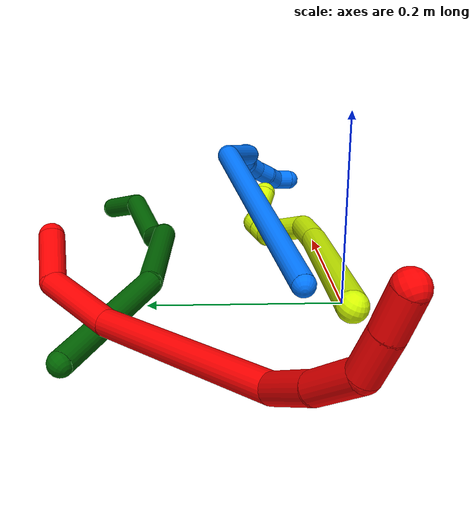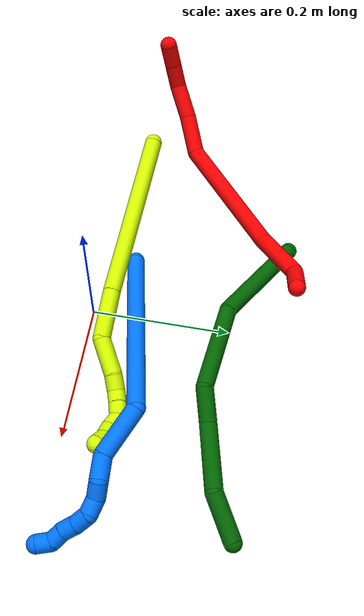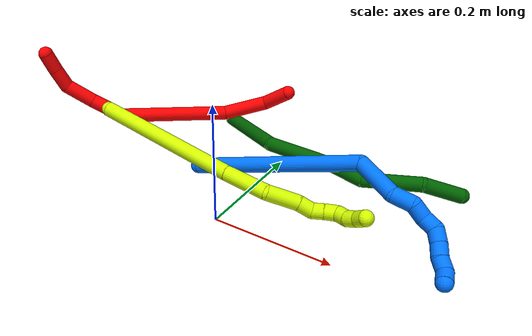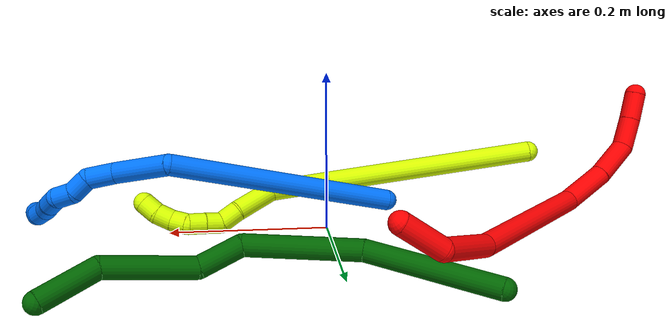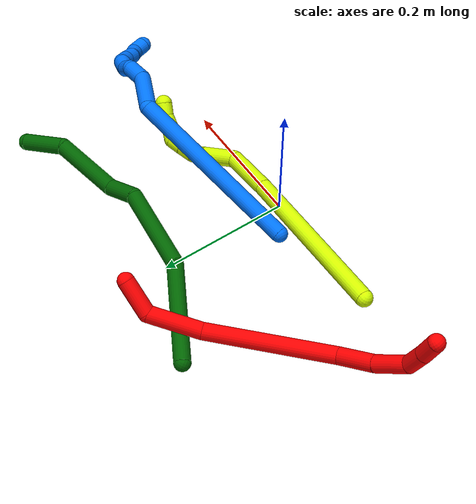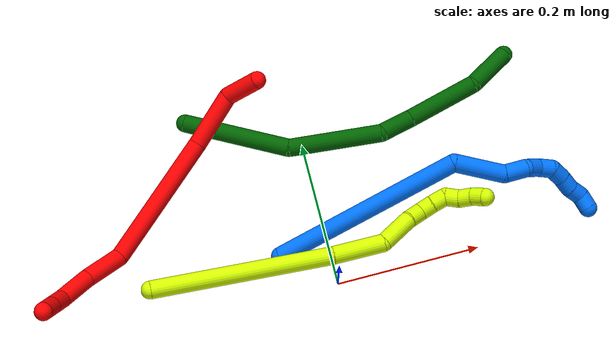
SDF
<sdf version="1.7">
 <world name="default">
  <model name="2">
   <static>0</static>
   <link name="2">
    <collision name="collision-cylinder-e_1_1_4">
     <pose>-0.005003 0.003401 -0.025767 -3.01035 -0.190166 1.93491</pose>
     <geometry><cylinder><radius>0.0125</radius><length>0.052936</length></cylinder></geometry>
     <surface>
      <friction><ode><mu>1.16</mu><mu2>1.16</mu2><slip1>0</slip1><slip2>0</slip2></ode></friction>
      <contact><ode><kp>1e+06</kp><kd>1</kd><max_vel>0</max_vel><min_depth>0.001</min_depth></ode></contact>
     </surface>
    </collision>
    <visual name="visual-cylinder-e_1_1_4">
     <pose>-0.005003 0.003401 -0.025767 -3.01035 -0.190166 1.93491</pose>
     <geometry><cylinder><radius>0.0125</radius><length>0.052936</length></cylinder></geometry>
     <material><ambient>1 0 0 1</ambient></material>
    </visual>
    <collision name="collision-cylinder-e_2_4_5">
     <pose>-0.022686 -0.013612 -0.082626 2.5606 -0.328542 -1.01255</pose>
     <geometry><cylinder><radius>0.0125</radius><length>0.078593</length></cylinder></geometry>
     <surface>
      <friction><ode><mu>1.16</mu><mu2>1.16</mu2><slip1>0</slip1><slip2>0</slip2></ode></friction>
      <contact><ode><kp>1e+06</kp><kd>1</kd><max_vel>0</max_vel><min_depth>0.001</min_depth></ode></contact>
     </surface>
    </collision>
    <visual name="visual-cylinder-e_2_4_5">
     <pose>-0.022686 -0.013612 -0.082626 2.5606 -0.328542 -1.01255</pose>
     <geometry><cylinder><radius>0.0125</radius><length>0.078593</length></cylinder></geometry>
     <material><ambient>1 0 0 1</ambient></material>
    </visual>
    <collision name="collision-cylinder-e_3_5_6">
     <pose>-0.082667 -0.089174 -0.173765 2.39871 -0.525725 -1.20907</pose>
     <geometry><cylinder><radius>0.0125</radius><length>0.188514</length></cylinder></geometry>
     <surface>
      <friction><ode><mu>1.16</mu><mu2>1.16</mu2><slip1>0</slip1><slip2>0</slip2></ode></friction>
      <contact><ode><kp>1e+06</kp><kd>1</kd><max_vel>0</max_vel><min_depth>0.001</min_depth></ode></contact>
     </surface>
    </collision>
    <visual name="visual-cylinder-e_3_5_6">
     <pose>-0.082667 -0.089174 -0.173765 2.39871 -0.525725 -1.20907</pose>
     <geometry><cylinder><radius>0.0125</radius><length>0.188514</length></cylinder></geometry>
     <material><ambient>1 0 0 1</ambient></material>
    </visual>
    <collision name="collision-cylinder-e_4_6_7">
     <pose>-0.154945 -0.155369 -0.244168 2.32384 -1.02578 -1.82998</pose>
     <geometry><cylinder><radius>0.0125</radius><length>0.058414</length></cylinder></geometry>
     <surface>
      <friction><ode><mu>1.16</mu><mu2>1.16</mu2><slip1>0</slip1><slip2>0</slip2></ode></friction>
      <contact><ode><kp>1e+06</kp><kd>1</kd><max_vel>0</max_vel><min_depth>0.001</min_depth></ode></contact>
     </surface>
    </collision>
    <visual name="visual-cylinder-e_4_6_7">
     <pose>-0.154945 -0.155369 -0.244168 2.32384 -1.02578 -1.82998</pose>
     <geometry><cylinder><radius>0.0125</radius><length>0.058414</length></cylinder></geometry>
     <material><ambient>1 0 0 1</ambient></material>
    </visual>
    <collision name="collision-cylinder-e_5_7_8">
     <pose>-0.20191 -0.178974 -0.260304 2.00226 -1.00955 -1.42358</pose>
     <geometry><cylinder><radius>0.0125</radius><length>0.051949</length></cylinder></geometry>
     <surface>
      <friction><ode><mu>1.16</mu><mu2>1.16</mu2><slip1>0</slip1><slip2>0</slip2></ode></friction>
      <contact><ode><kp>1e+06</kp><kd>1</kd><max_vel>0</max_vel><min_depth>0.001</min_depth></ode></contact>
     </surface>
    </collision>
    <visual name="visual-cylinder-e_5_7_8">
     <pose>-0.20191 -0.178974 -0.260304 2.00226 -1.00955 -1.42358</pose>
     <geometry><cylinder><radius>0.0125</radius><length>0.051949</length></cylinder></geometry>
     <material><ambient>1 0 0 1</ambient></material>
    </visual>
    <collision name="collision-cylinder-e_6_8_9">
     <pose>-0.239031 -0.199711 -0.260248 0.950901 -0.984536 -0.5388</pose>
     <geometry><cylinder><radius>0.0125</radius><length>0.036327</length></cylinder></geometry>
     <surface>
      <friction><ode><mu>1.16</mu><mu2>1.16</mu2><slip1>0</slip1><slip2>0</slip2></ode></friction>
      <contact><ode><kp>1e+06</kp><kd>1</kd><max_vel>0</max_vel><min_depth>0.001</min_depth></ode></contact>
     </surface>
    </collision>
    <visual name="visual-cylinder-e_6_8_9">
     <pose>-0.239031 -0.199711 -0.260248 0.950901 -0.984536 -0.5388</pose>
     <geometry><cylinder><radius>0.0125</radius><length>0.036327</length></cylinder></geometry>
     <material><ambient>1 0 0 1</ambient></material>
    </visual>
    <collision name="collision-cylinder-e_7_9_2">
     <pose>-0.267611 -0.215315 -0.248035 0.86134 -0.941807 -0.459535</pose>
     <geometry><cylinder><radius>0.0125</radius><length>0.033266</length></cylinder></geometry>
     <surface>
      <friction><ode><mu>1.16</mu><mu2>1.16</mu2><slip1>0</slip1><slip2>0</slip2></ode></friction>
      <contact><ode><kp>1e+06</kp><kd>1</kd><max_vel>0</max_vel><min_depth>0.001</min_depth></ode></contact>
     </surface>
    </collision>
    <visual name="visual-cylinder-e_7_9_2">
     <pose>-0.267611 -0.215315 -0.248035 0.86134 -0.941807 -0.459535</pose>
     <geometry><cylinder><radius>0.0125</radius><length>0.033266</length></cylinder></geometry>
     <material><ambient>1 0 0 1</ambient></material>
    </visual>
    <collision name="collision-sphere-2">
     <pose>-0.281061 -0.22274 -0.241661 0 -0 0</pose>
     <geometry><sphere><radius>0.0125</radius></sphere></geometry>
     <surface>
      <friction><ode><mu>1.16</mu><mu2>1.16</mu2><slip1>0</slip1><slip2>0</slip2></ode></friction>
      <contact><ode><kp>1e+06</kp><kd>1</kd><max_vel>0</max_vel><min_depth>0.001</min_depth></ode></contact>
     </surface>
    </collision>
    <visual name="visual-sphere-2">
     <pose>-0.281061 -0.22274 -0.241661 0 -0 0</pose>
     <geometry><sphere><radius>0.0125</radius></sphere></geometry>
     <material><ambient>1 0 0 1</ambient></material>
    </visual>
    <collision name="collision-sphere-9">
     <pose>-0.254161 -0.207891 -0.25441 0 -0 0</pose>
     <geometry><sphere><radius>0.0125</radius></sphere></geometry>
     <surface>
      <friction><ode><mu>1.16</mu><mu2>1.16</mu2><slip1>0</slip1><slip2>0</slip2></ode></friction>
      <contact><ode><kp>1e+06</kp><kd>1</kd><max_vel>0</max_vel><min_depth>0.001</min_depth></ode></contact>
     </surface>
    </collision>
    <visual name="visual-sphere-9">
     <pose>-0.254161 -0.207891 -0.25441 0 -0 0</pose>
     <geometry><sphere><radius>0.0125</radius></sphere></geometry>
     <material><ambient>1 0 0 1</ambient></material>
    </visual>
    <collision name="collision-sphere-4">
     <pose>-0.010006 0.006803 -0.051534 0 -0 0</pose>
     <geometry><sphere><radius>0.0125</radius></sphere></geometry>
     <surface>
      <friction><ode><mu>1.16</mu><mu2>1.16</mu2><slip1>0</slip1><slip2>0</slip2></ode></friction>
      <contact><ode><kp>1e+06</kp><kd>1</kd><max_vel>0</max_vel><min_depth>0.001</min_depth></ode></contact>
     </surface>
    </collision>
    <visual name="visual-sphere-4">
     <pose>-0.010006 0.006803 -0.051534 0 -0 0</pose>
     <geometry><sphere><radius>0.0125</radius></sphere></geometry>
     <material><ambient>1 0 0 1</ambient></material>
    </visual>
    <collision name="collision-sphere-1">
     <geometry><sphere><radius>0.0125</radius></sphere></geometry>
     <surface>
      <friction><ode><mu>1.16</mu><mu2>1.16</mu2><slip1>0</slip1><slip2>0</slip2></ode></friction>
      <contact><ode><kp>1e+06</kp><kd>1</kd><max_vel>0</max_vel><min_depth>0.001</min_depth></ode></contact>
     </surface>
    </collision>
    <visual name="visual-sphere-1">
     <geometry><sphere><radius>0.0125</radius></sphere></geometry>
     <material><ambient>1 0 0 1</ambient></material>
    </visual>
    <collision name="collision-sphere-8">
     <pose>-0.2239 -0.191532 -0.266086 0 -0 0</pose>
     <geometry><sphere><radius>0.0125</radius></sphere></geometry>
     <surface>
      <friction><ode><mu>1.16</mu><mu2>1.16</mu2><slip1>0</slip1><slip2>0</slip2></ode></friction>
      <contact><ode><kp>1e+06</kp><kd>1</kd><max_vel>0</max_vel><min_depth>0.001</min_depth></ode></contact>
     </surface>
    </collision>
    <visual name="visual-sphere-8">
     <pose>-0.2239 -0.191532 -0.266086 0 -0 0</pose>
     <geometry><sphere><radius>0.0125</radius></sphere></geometry>
     <material><ambient>1 0 0 1</ambient></material>
    </visual>
    <collision name="collision-sphere-5">
     <pose>-0.035365 -0.034027 -0.113718 0 -0 0</pose>
     <geometry><sphere><radius>0.0125</radius></sphere></geometry>
     <surface>
      <friction><ode><mu>1.16</mu><mu2>1.16</mu2><slip1>0</slip1><slip2>0</slip2></ode></friction>
      <contact><ode><kp>1e+06</kp><kd>1</kd><max_vel>0</max_vel><min_depth>0.001</min_depth></ode></contact>
     </surface>
    </collision>
    <visual name="visual-sphere-5">
     <pose>-0.035365 -0.034027 -0.113718 0 -0 0</pose>
     <geometry><sphere><radius>0.0125</radius></sphere></geometry>
     <material><ambient>1 0 0 1</ambient></material>
    </visual>
    <collision name="collision-sphere-6">
     <pose>-0.129969 -0.144321 -0.233813 0 -0 0</pose>
     <geometry><sphere><radius>0.0125</radius></sphere></geometry>
     <surface>
      <friction><ode><mu>1.16</mu><mu2>1.16</mu2><slip1>0</slip1><slip2>0</slip2></ode></friction>
      <contact><ode><kp>1e+06</kp><kd>1</kd><max_vel>0</max_vel><min_depth>0.001</min_depth></ode></contact>
     </surface>
    </collision>
    <visual name="visual-sphere-6">
     <pose>-0.129969 -0.144321 -0.233813 0 -0 0</pose>
     <geometry><sphere><radius>0.0125</radius></sphere></geometry>
     <material><ambient>1 0 0 1</ambient></material>
    </visual>
    <collision name="collision-sphere-7">
     <pose>-0.17992 -0.166417 -0.254523 0 -0 0</pose>
     <geometry><sphere><radius>0.0125</radius></sphere></geometry>
     <surface>
      <friction><ode><mu>1.16</mu><mu2>1.16</mu2><slip1>0</slip1><slip2>0</slip2></ode></friction>
      <contact><ode><kp>1e+06</kp><kd>1</kd><max_vel>0</max_vel><min_depth>0.001</min_depth></ode></contact>
     </surface>
    </collision>
    <visual name="visual-sphere-7">
     <pose>-0.17992 -0.166417 -0.254523 0 -0 0</pose>
     <geometry><sphere><radius>0.0125</radius></sphere></geometry>
     <material><ambient>1 0 0 1</ambient></material>
    </visual>
    <inertial>
     <pose>-0.109515 -0.100983 -0.172212 0 -0 0</pose>
     <mass>0.5</mass>
     <inertia>
      <ixx>-0.000327</ixx>
      <ixy>0</ixy>
      <ixz>0</ixz>
      <iyy>-0.000459</iyy>
      <iyz>0</iyz>
      <izz>0.000687</izz>
     </inertia>
    </inertial>
   </link>
   <pose>-0.039751 0.287612 0.089211 -0.34295 0.762435 -0.139442</pose>
  </model>
  <model name="6">
   <static>0</static>
   <link name="6">
    <collision name="collision-cylinder-e_1_1_4">
     <pose>0.046927 -0.052878 -0.028232 2.06121 0.664206 1.0438</pose>
     <geometry><cylinder><radius>0.0125</radius><length>0.152253</length></cylinder></geometry>
     <surface>
      <friction><ode><mu>1.16</mu><mu2>1.16</mu2><slip1>0</slip1><slip2>0</slip2></ode></friction>
      <contact><ode><kp>1e+06</kp><kd>1</kd><max_vel>0</max_vel><min_depth>0.001</min_depth></ode></contact>
     </surface>
    </collision>
    <visual name="visual-cylinder-e_1_1_4">
     <pose>0.046927 -0.052878 -0.028232 2.06121 0.664206 1.0438</pose>
     <geometry><cylinder><radius>0.0125</radius><length>0.152253</length></cylinder></geometry>
     <material><ambient>0 0.392157 0.003922 1</ambient></material>
    </visual>
    <collision name="collision-cylinder-e_2_4_5">
     <pose>0.114559 -0.149509 -0.099398 2.34673 0.325728 0.746231</pose>
     <geometry><cylinder><radius>0.0125</radius><length>0.129404</length></cylinder></geometry>
     <surface>
      <friction><ode><mu>1.16</mu><mu2>1.16</mu2><slip1>0</slip1><slip2>0</slip2></ode></friction>
      <contact><ode><kp>1e+06</kp><kd>1</kd><max_vel>0</max_vel><min_depth>0.001</min_depth></ode></contact>
     </surface>
    </collision>
    <visual name="visual-cylinder-e_2_4_5">
     <pose>0.114559 -0.149509 -0.099398 2.34673 0.325728 0.746231</pose>
     <geometry><cylinder><radius>0.0125</radius><length>0.129404</length></cylinder></geometry>
     <material><ambient>0 0.392157 0.003922 1</ambient></material>
    </visual>
    <collision name="collision-cylinder-e_3_5_6">
     <pose>0.129195 -0.211483 -0.158942 2.31003 -0.241336 -0.536052</pose>
     <geometry><cylinder><radius>0.0125</radius><length>0.050783</length></cylinder></geometry>
     <surface>
      <friction><ode><mu>1.16</mu><mu2>1.16</mu2><slip1>0</slip1><slip2>0</slip2></ode></friction>
      <contact><ode><kp>1e+06</kp><kd>1</kd><max_vel>0</max_vel><min_depth>0.001</min_depth></ode></contact>
     </surface>
    </collision>
    <visual name="visual-cylinder-e_3_5_6">
     <pose>0.129195 -0.211483 -0.158942 2.31003 -0.241336 -0.536052</pose>
     <geometry><cylinder><radius>0.0125</radius><length>0.050783</length></cylinder></geometry>
     <material><ambient>0 0.392157 0.003922 1</ambient></material>
    </visual>
    <collision name="collision-cylinder-e_4_6_7">
     <pose>0.13014 -0.2535 -0.219156 2.64201 0.140269 0.537405</pose>
     <geometry><cylinder><radius>0.0125</radius><length>0.100331</length></cylinder></geometry>
     <surface>
      <friction><ode><mu>1.16</mu><mu2>1.16</mu2><slip1>0</slip1><slip2>0</slip2></ode></friction>
      <contact><ode><kp>1e+06</kp><kd>1</kd><max_vel>0</max_vel><min_depth>0.001</min_depth></ode></contact>
     </surface>
    </collision>
    <visual name="visual-cylinder-e_4_6_7">
     <pose>0.13014 -0.2535 -0.219156 2.64201 0.140269 0.537405</pose>
     <geometry><cylinder><radius>0.0125</radius><length>0.100331</length></cylinder></geometry>
     <material><ambient>0 0.392157 0.003922 1</ambient></material>
    </visual>
    <collision name="collision-cylinder-e_5_7_2">
     <pose>0.124136 -0.294864 -0.288289 2.5389 -0.397647 -1.15029</pose>
     <geometry><cylinder><radius>0.0125</radius><length>0.067228</length></cylinder></geometry>
     <surface>
      <friction><ode><mu>1.16</mu><mu2>1.16</mu2><slip1>0</slip1><slip2>0</slip2></ode></friction>
      <contact><ode><kp>1e+06</kp><kd>1</kd><max_vel>0</max_vel><min_depth>0.001</min_depth></ode></contact>
     </surface>
    </collision>
    <visual name="visual-cylinder-e_5_7_2">
     <pose>0.124136 -0.294864 -0.288289 2.5389 -0.397647 -1.15029</pose>
     <geometry><cylinder><radius>0.0125</radius><length>0.067228</length></cylinder></geometry>
     <material><ambient>0 0.392157 0.003922 1</ambient></material>
    </visual>
    <collision name="collision-sphere-2">
     <pose>0.111119 -0.312432 -0.31382 0 -0 0</pose>
     <geometry><sphere><radius>0.0125</radius></sphere></geometry>
     <surface>
      <friction><ode><mu>1.16</mu><mu2>1.16</mu2><slip1>0</slip1><slip2>0</slip2></ode></friction>
      <contact><ode><kp>1e+06</kp><kd>1</kd><max_vel>0</max_vel><min_depth>0.001</min_depth></ode></contact>
     </surface>
    </collision>
    <visual name="visual-sphere-2">
     <pose>0.111119 -0.312432 -0.31382 0 -0 0</pose>
     <geometry><sphere><radius>0.0125</radius></sphere></geometry>
     <material><ambient>0 0.392157 0.003922 1</ambient></material>
    </visual>
    <collision name="collision-sphere-7">
     <pose>0.137153 -0.277296 -0.262758 0 -0 0</pose>
     <geometry><sphere><radius>0.0125</radius></sphere></geometry>
     <surface>
      <friction><ode><mu>1.16</mu><mu2>1.16</mu2><slip1>0</slip1><slip2>0</slip2></ode></friction>
      <contact><ode><kp>1e+06</kp><kd>1</kd><max_vel>0</max_vel><min_depth>0.001</min_depth></ode></contact>
     </surface>
    </collision>
    <visual name="visual-sphere-7">
     <pose>0.137153 -0.277296 -0.262758 0 -0 0</pose>
     <geometry><sphere><radius>0.0125</radius></sphere></geometry>
     <material><ambient>0 0.392157 0.003922 1</ambient></material>
    </visual>
    <collision name="collision-sphere-6">
     <pose>0.123126 -0.229704 -0.175553 0 -0 0</pose>
     <geometry><sphere><radius>0.0125</radius></sphere></geometry>
     <surface>
      <friction><ode><mu>1.16</mu><mu2>1.16</mu2><slip1>0</slip1><slip2>0</slip2></ode></friction>
      <contact><ode><kp>1e+06</kp><kd>1</kd><max_vel>0</max_vel><min_depth>0.001</min_depth></ode></contact>
     </surface>
    </collision>
    <visual name="visual-sphere-6">
     <pose>0.123126 -0.229704 -0.175553 0 -0 0</pose>
     <geometry><sphere><radius>0.0125</radius></sphere></geometry>
     <material><ambient>0 0.392157 0.003922 1</ambient></material>
    </visual>
    <collision name="collision-sphere-5">
     <pose>0.135263 -0.193263 -0.142331 0 -0 0</pose>
     <geometry><sphere><radius>0.0125</radius></sphere></geometry>
     <surface>
      <friction><ode><mu>1.16</mu><mu2>1.16</mu2><slip1>0</slip1><slip2>0</slip2></ode></friction>
      <contact><ode><kp>1e+06</kp><kd>1</kd><max_vel>0</max_vel><min_depth>0.001</min_depth></ode></contact>
     </surface>
    </collision>
    <visual name="visual-sphere-5">
     <pose>0.135263 -0.193263 -0.142331 0 -0 0</pose>
     <geometry><sphere><radius>0.0125</radius></sphere></geometry>
     <material><ambient>0 0.392157 0.003922 1</ambient></material>
    </visual>
    <collision name="collision-sphere-1">
     <geometry><sphere><radius>0.0125</radius></sphere></geometry>
     <surface>
      <friction><ode><mu>1.16</mu><mu2>1.16</mu2><slip1>0</slip1><slip2>0</slip2></ode></friction>
      <contact><ode><kp>1e+06</kp><kd>1</kd><max_vel>0</max_vel><min_depth>0.001</min_depth></ode></contact>
     </surface>
    </collision>
    <visual name="visual-sphere-1">
     <geometry><sphere><radius>0.0125</radius></sphere></geometry>
     <material><ambient>0 0.392157 0.003922 1</ambient></material>
    </visual>
    <collision name="collision-sphere-4">
     <pose>0.093854 -0.105755 -0.056465 0 -0 0</pose>
     <geometry><sphere><radius>0.0125</radius></sphere></geometry>
     <surface>
      <friction><ode><mu>1.16</mu><mu2>1.16</mu2><slip1>0</slip1><slip2>0</slip2></ode></friction>
      <contact><ode><kp>1e+06</kp><kd>1</kd><max_vel>0</max_vel><min_depth>0.001</min_depth></ode></contact>
     </surface>
    </collision>
    <visual name="visual-sphere-4">
     <pose>0.093854 -0.105755 -0.056465 0 -0 0</pose>
     <geometry><sphere><radius>0.0125</radius></sphere></geometry>
     <material><ambient>0 0.392157 0.003922 1</ambient></material>
    </visual>
    <inertial>
     <pose>0.099865 -0.16679 -0.133204 0 -0 0</pose>
     <mass>0.5</mass>
     <inertia>
      <ixx>0.000691</ixx>
      <ixy>0</ixy>
      <ixz>0</ixz>
      <iyy>0.000244</iyy>
      <iyz>0</iyz>
      <izz>0.000132</izz>
     </inertia>
    </inertial>
   </link>
   <pose>-0.150303 0.27034 0.011478 2.109 -0.775007 -1.26475</pose>
  </model>
  <model name="14">
   <static>0</static>
   <link name="14">
    <collision name="collision-cylinder-e_1_1_4">
     <pose>0.010108 0.028375 0.131482 -0.212549 0.075004 -0.008005</pose>
     <geometry><cylinder><radius>0.0125</radius><length>0.269777</length></cylinder></geometry>
     <surface>
      <friction><ode><mu>1.16</mu><mu2>1.16</mu2><slip1>0</slip1><slip2>0</slip2></ode></friction>
      <contact><ode><kp>1e+06</kp><kd>1</kd><max_vel>0</max_vel><min_depth>0.001</min_depth></ode></contact>
     </surface>
    </collision>
    <visual name="visual-cylinder-e_1_1_4">
     <pose>0.010108 0.028375 0.131482 -0.212549 0.075004 -0.008005</pose>
     <geometry><cylinder><radius>0.0125</radius><length>0.269777</length></cylinder></geometry>
     <material><ambient>0 0.462745 1 1</ambient></material>
    </visual>
    <collision name="collision-cylinder-e_2_4_5">
     <pose>0.033583 0.040107 0.291437 0.528968 0.385089 0.105504</pose>
     <geometry><cylinder><radius>0.0125</radius><length>0.071171</length></cylinder></geometry>
     <surface>
      <friction><ode><mu>1.16</mu><mu2>1.16</mu2><slip1>0</slip1><slip2>0</slip2></ode></friction>
      <contact><ode><kp>1e+06</kp><kd>1</kd><max_vel>0</max_vel><min_depth>0.001</min_depth></ode></contact>
     </surface>
    </collision>
    <visual name="visual-cylinder-e_2_4_5">
     <pose>0.033583 0.040107 0.291437 0.528968 0.385089 0.105504</pose>
     <geometry><cylinder><radius>0.0125</radius><length>0.071171</length></cylinder></geometry>
     <material><ambient>0 0.462745 1 1</ambient></material>
    </visual>
    <collision name="collision-cylinder-e_3_5_6">
     <pose>0.054122 0.023163 0.334154 0.021142 0.466294 0.005021</pose>
     <geometry><cylinder><radius>0.0125</radius><length>0.031901</length></cylinder></geometry>
     <surface>
      <friction><ode><mu>1.16</mu><mu2>1.16</mu2><slip1>0</slip1><slip2>0</slip2></ode></friction>
      <contact><ode><kp>1e+06</kp><kd>1</kd><max_vel>0</max_vel><min_depth>0.001</min_depth></ode></contact>
     </surface>
    </collision>
    <visual name="visual-cylinder-e_3_5_6">
     <pose>0.054122 0.023163 0.334154 0.021142 0.466294 0.005021</pose>
     <geometry><cylinder><radius>0.0125</radius><length>0.031901</length></cylinder></geometry>
     <material><ambient>0 0.462745 1 1</ambient></material>
    </visual>
    <collision name="collision-cylinder-e_4_6_7">
     <pose>0.071246 0.021052 0.354216 0.301643 1.02149 0.169906</pose>
     <geometry><cylinder><radius>0.0125</radius><length>0.023341</length></cylinder></geometry>
     <surface>
      <friction><ode><mu>1.16</mu><mu2>1.16</mu2><slip1>0</slip1><slip2>0</slip2></ode></friction>
      <contact><ode><kp>1e+06</kp><kd>1</kd><max_vel>0</max_vel><min_depth>0.001</min_depth></ode></contact>
     </surface>
    </collision>
    <visual name="visual-cylinder-e_4_6_7">
     <pose>0.071246 0.021052 0.354216 0.301643 1.02149 0.169906</pose>
     <geometry><cylinder><radius>0.0125</radius><length>0.023341</length></cylinder></geometry>
     <material><ambient>0 0.462745 1 1</ambient></material>
    </visual>
    <collision name="collision-cylinder-e_5_7_8">
     <pose>0.086936 0.015525 0.368777 0.401953 0.543183 0.113343</pose>
     <geometry><cylinder><radius>0.0125</radius><length>0.022194</length></cylinder></geometry>
     <surface>
      <friction><ode><mu>1.16</mu><mu2>1.16</mu2><slip1>0</slip1><slip2>0</slip2></ode></friction>
      <contact><ode><kp>1e+06</kp><kd>1</kd><max_vel>0</max_vel><min_depth>0.001</min_depth></ode></contact>
     </surface>
    </collision>
    <visual name="visual-cylinder-e_5_7_8">
     <pose>0.086936 0.015525 0.368777 0.401953 0.543183 0.113343</pose>
     <geometry><cylinder><radius>0.0125</radius><length>0.022194</length></cylinder></geometry>
     <material><ambient>0 0.462745 1 1</ambient></material>
    </visual>
    <collision name="collision-cylinder-e_6_8_9">
     <pose>0.098638 0.003993 0.38134 1.11619 0.601214 0.382339</pose>
     <geometry><cylinder><radius>0.0125</radius><length>0.021098</length></cylinder></geometry>
     <surface>
      <friction><ode><mu>1.16</mu><mu2>1.16</mu2><slip1>0</slip1><slip2>0</slip2></ode></friction>
      <contact><ode><kp>1e+06</kp><kd>1</kd><max_vel>0</max_vel><min_depth>0.001</min_depth></ode></contact>
     </surface>
    </collision>
    <visual name="visual-cylinder-e_6_8_9">
     <pose>0.098638 0.003993 0.38134 1.11619 0.601214 0.382339</pose>
     <geometry><cylinder><radius>0.0125</radius><length>0.021098</length></cylinder></geometry>
     <material><ambient>0 0.462745 1 1</ambient></material>
    </visual>
    <collision name="collision-cylinder-e_7_9_10">
     <pose>0.109149 -0.01247 0.388032 1.25012 0.462544 0.336626</pose>
     <geometry><cylinder><radius>0.0125</radius><length>0.020364</length></cylinder></geometry>
     <surface>
      <friction><ode><mu>1.16</mu><mu2>1.16</mu2><slip1>0</slip1><slip2>0</slip2></ode></friction>
      <contact><ode><kp>1e+06</kp><kd>1</kd><max_vel>0</max_vel><min_depth>0.001</min_depth></ode></contact>
     </surface>
    </collision>
    <visual name="visual-cylinder-e_7_9_10">
     <pose>0.109149 -0.01247 0.388032 1.25012 0.462544 0.336626</pose>
     <geometry><cylinder><radius>0.0125</radius><length>0.020364</length></cylinder></geometry>
     <material><ambient>0 0.462745 1 1</ambient></material>
    </visual>
    <collision name="collision-cylinder-e_8_10_11">
     <pose>0.119095 -0.028069 0.395784 0.958696 0.566555 0.300345</pose>
     <geometry><cylinder><radius>0.0125</radius><length>0.020133</length></cylinder></geometry>
     <surface>
      <friction><ode><mu>1.16</mu><mu2>1.16</mu2><slip1>0</slip1><slip2>0</slip2></ode></friction>
      <contact><ode><kp>1e+06</kp><kd>1</kd><max_vel>0</max_vel><min_depth>0.001</min_depth></ode></contact>
     </surface>
    </collision>
    <visual name="visual-cylinder-e_8_10_11">
     <pose>0.119095 -0.028069 0.395784 0.958696 0.566555 0.300345</pose>
     <geometry><cylinder><radius>0.0125</radius><length>0.020133</length></cylinder></geometry>
     <material><ambient>0 0.462745 1 1</ambient></material>
    </visual>
    <collision name="collision-cylinder-e_9_11_2">
     <pose>0.124617 -0.044641 0.403429 1.29097 0.011868 0.008938</pose>
     <geometry><cylinder><radius>0.0125</radius><length>0.02002</length></cylinder></geometry>
     <surface>
      <friction><ode><mu>1.16</mu><mu2>1.16</mu2><slip1>0</slip1><slip2>0</slip2></ode></friction>
      <contact><ode><kp>1e+06</kp><kd>1</kd><max_vel>0</max_vel><min_depth>0.001</min_depth></ode></contact>
     </surface>
    </collision>
    <visual name="visual-cylinder-e_9_11_2">
     <pose>0.124617 -0.044641 0.403429 1.29097 0.011868 0.008938</pose>
     <geometry><cylinder><radius>0.0125</radius><length>0.02002</length></cylinder></geometry>
     <material><ambient>0 0.462745 1 1</ambient></material>
    </visual>
    <collision name="collision-sphere-2">
     <pose>0.124736 -0.054261 0.406194 0 -0 0</pose>
     <geometry><sphere><radius>0.0125</radius></sphere></geometry>
     <surface>
      <friction><ode><mu>1.16</mu><mu2>1.16</mu2><slip1>0</slip1><slip2>0</slip2></ode></friction>
      <contact><ode><kp>1e+06</kp><kd>1</kd><max_vel>0</max_vel><min_depth>0.001</min_depth></ode></contact>
     </surface>
    </collision>
    <visual name="visual-sphere-2">
     <pose>0.124736 -0.054261 0.406194 0 -0 0</pose>
     <geometry><sphere><radius>0.0125</radius></sphere></geometry>
     <material><ambient>0 0.462745 1 1</ambient></material>
    </visual>
    <collision name="collision-sphere-11">
     <pose>0.124498 -0.035021 0.400665 0 -0 0</pose>
     <geometry><sphere><radius>0.0125</radius></sphere></geometry>
     <surface>
      <friction><ode><mu>1.16</mu><mu2>1.16</mu2><slip1>0</slip1><slip2>0</slip2></ode></friction>
      <contact><ode><kp>1e+06</kp><kd>1</kd><max_vel>0</max_vel><min_depth>0.001</min_depth></ode></contact>
     </surface>
    </collision>
    <visual name="visual-sphere-11">
     <pose>0.124498 -0.035021 0.400665 0 -0 0</pose>
     <geometry><sphere><radius>0.0125</radius></sphere></geometry>
     <material><ambient>0 0.462745 1 1</ambient></material>
    </visual>
    <collision name="collision-sphere-10">
     <pose>0.113692 -0.021118 0.390904 0 -0 0</pose>
     <geometry><sphere><radius>0.0125</radius></sphere></geometry>
     <surface>
      <friction><ode><mu>1.16</mu><mu2>1.16</mu2><slip1>0</slip1><slip2>0</slip2></ode></friction>
      <contact><ode><kp>1e+06</kp><kd>1</kd><max_vel>0</max_vel><min_depth>0.001</min_depth></ode></contact>
     </surface>
    </collision>
    <visual name="visual-sphere-10">
     <pose>0.113692 -0.021118 0.390904 0 -0 0</pose>
     <geometry><sphere><radius>0.0125</radius></sphere></geometry>
     <material><ambient>0 0.462745 1 1</ambient></material>
    </visual>
    <collision name="collision-sphere-9">
     <pose>0.104605 -0.003823 0.38516 0 -0 0</pose>
     <geometry><sphere><radius>0.0125</radius></sphere></geometry>
     <surface>
      <friction><ode><mu>1.16</mu><mu2>1.16</mu2><slip1>0</slip1><slip2>0</slip2></ode></friction>
      <contact><ode><kp>1e+06</kp><kd>1</kd><max_vel>0</max_vel><min_depth>0.001</min_depth></ode></contact>
     </surface>
    </collision>
    <visual name="visual-sphere-9">
     <pose>0.104605 -0.003823 0.38516 0 -0 0</pose>
     <geometry><sphere><radius>0.0125</radius></sphere></geometry>
     <material><ambient>0 0.462745 1 1</ambient></material>
    </visual>
    <collision name="collision-sphere-4">
     <pose>0.020216 0.05675 0.262965 0 -0 0</pose>
     <geometry><sphere><radius>0.0125</radius></sphere></geometry>
     <surface>
      <friction><ode><mu>1.16</mu><mu2>1.16</mu2><slip1>0</slip1><slip2>0</slip2></ode></friction>
      <contact><ode><kp>1e+06</kp><kd>1</kd><max_vel>0</max_vel><min_depth>0.001</min_depth></ode></contact>
     </surface>
    </collision>
    <visual name="visual-sphere-4">
     <pose>0.020216 0.05675 0.262965 0 -0 0</pose>
     <geometry><sphere><radius>0.0125</radius></sphere></geometry>
     <material><ambient>0 0.462745 1 1</ambient></material>
    </visual>
    <collision name="collision-sphere-1">
     <geometry><sphere><radius>0.0125</radius></sphere></geometry>
     <surface>
      <friction><ode><mu>1.16</mu><mu2>1.16</mu2><slip1>0</slip1><slip2>0</slip2></ode></friction>
      <contact><ode><kp>1e+06</kp><kd>1</kd><max_vel>0</max_vel><min_depth>0.001</min_depth></ode></contact>
     </surface>
    </collision>
    <visual name="visual-sphere-1">
     <geometry><sphere><radius>0.0125</radius></sphere></geometry>
     <material><ambient>0 0.462745 1 1</ambient></material>
    </visual>
    <collision name="collision-sphere-8">
     <pose>0.092671 0.011808 0.37752 0 -0 0</pose>
     <geometry><sphere><radius>0.0125</radius></sphere></geometry>
     <surface>
      <friction><ode><mu>1.16</mu><mu2>1.16</mu2><slip1>0</slip1><slip2>0</slip2></ode></friction>
      <contact><ode><kp>1e+06</kp><kd>1</kd><max_vel>0</max_vel><min_depth>0.001</min_depth></ode></contact>
     </surface>
    </collision>
    <visual name="visual-sphere-8">
     <pose>0.092671 0.011808 0.37752 0 -0 0</pose>
     <geometry><sphere><radius>0.0125</radius></sphere></geometry>
     <material><ambient>0 0.462745 1 1</ambient></material>
    </visual>
    <collision name="collision-sphere-5">
     <pose>0.046951 0.023464 0.319909 0 -0 0</pose>
     <geometry><sphere><radius>0.0125</radius></sphere></geometry>
     <surface>
      <friction><ode><mu>1.16</mu><mu2>1.16</mu2><slip1>0</slip1><slip2>0</slip2></ode></friction>
      <contact><ode><kp>1e+06</kp><kd>1</kd><max_vel>0</max_vel><min_depth>0.001</min_depth></ode></contact>
     </surface>
    </collision>
    <visual name="visual-sphere-5">
     <pose>0.046951 0.023464 0.319909 0 -0 0</pose>
     <geometry><sphere><radius>0.0125</radius></sphere></geometry>
     <material><ambient>0 0.462745 1 1</ambient></material>
    </visual>
    <collision name="collision-sphere-6">
     <pose>0.061293 0.022862 0.348398 0 -0 0</pose>
     <geometry><sphere><radius>0.0125</radius></sphere></geometry>
     <surface>
      <friction><ode><mu>1.16</mu><mu2>1.16</mu2><slip1>0</slip1><slip2>0</slip2></ode></friction>
      <contact><ode><kp>1e+06</kp><kd>1</kd><max_vel>0</max_vel><min_depth>0.001</min_depth></ode></contact>
     </surface>
    </collision>
    <visual name="visual-sphere-6">
     <pose>0.061293 0.022862 0.348398 0 -0 0</pose>
     <geometry><sphere><radius>0.0125</radius></sphere></geometry>
     <material><ambient>0 0.462745 1 1</ambient></material>
    </visual>
    <collision name="collision-sphere-7">
     <pose>0.0812 0.019241 0.360035 0 -0 0</pose>
     <geometry><sphere><radius>0.0125</radius></sphere></geometry>
     <surface>
      <friction><ode><mu>1.16</mu><mu2>1.16</mu2><slip1>0</slip1><slip2>0</slip2></ode></friction>
      <contact><ode><kp>1e+06</kp><kd>1</kd><max_vel>0</max_vel><min_depth>0.001</min_depth></ode></contact>
     </surface>
    </collision>
    <visual name="visual-sphere-7">
     <pose>0.0812 0.019241 0.360035 0 -0 0</pose>
     <geometry><sphere><radius>0.0125</radius></sphere></geometry>
     <material><ambient>0 0.462745 1 1</ambient></material>
    </visual>
    <inertial>
     <pose>0.039265 0.020911 0.230635 0 -0 0</pose>
     <mass>0.5</mass>
     <inertia>
      <ixx>0.001685</ixx>
      <ixy>0</ixy>
      <ixz>0</ixz>
      <iyy>0.001637</iyy>
      <iyz>0</iyz>
      <izz>-0.000436</izz>
     </inertia>
    </inertial>
   </link>
   <pose>-0.068553 0.051288 0.048478 0.499714 1.2455 0.50542</pose>
  </model>
  <model name="15">
   <static>0</static>
   <link name="15">
    <collision name="collision-cylinder-e_1_1_4">
     <pose>0.119226 -0.001435 -0.040661 3.1063 1.24193 3.09227</pose>
     <geometry><cylinder><radius>0.0125</radius><length>0.251954</length></cylinder></geometry>
     <surface>
      <friction><ode><mu>1.16</mu><mu2>1.16</mu2><slip1>0</slip1><slip2>0</slip2></ode></friction>
      <contact><ode><kp>1e+06</kp><kd>1</kd><max_vel>0</max_vel><min_depth>0.001</min_depth></ode></contact>
     </surface>
    </collision>
    <visual name="visual-cylinder-e_1_1_4">
     <pose>0.119226 -0.001435 -0.040661 3.1063 1.24193 3.09227</pose>
     <geometry><cylinder><radius>0.0125</radius><length>0.251954</length></cylinder></geometry>
     <material><ambient>0.835294 1 0 1</ambient></material>
    </visual>
    <collision name="collision-cylinder-e_2_4_5">
     <pose>0.272287 -0.001224 -0.093363 -3.00564 1.22599 -2.94862</pose>
     <geometry><cylinder><radius>0.0125</radius><length>0.071904</length></cylinder></geometry>
     <surface>
      <friction><ode><mu>1.16</mu><mu2>1.16</mu2><slip1>0</slip1><slip2>0</slip2></ode></friction>
      <contact><ode><kp>1e+06</kp><kd>1</kd><max_vel>0</max_vel><min_depth>0.001</min_depth></ode></contact>
     </surface>
    </collision>
    <visual name="visual-cylinder-e_2_4_5">
     <pose>0.272287 -0.001224 -0.093363 -3.00564 1.22599 -2.94862</pose>
     <geometry><cylinder><radius>0.0125</radius><length>0.071904</length></cylinder></geometry>
     <material><ambient>0.835294 1 0 1</ambient></material>
    </visual>
    <collision name="collision-cylinder-e_3_5_6">
     <pose>0.323161 0.010355 -0.122197 -2.60751 0.71783 -1.88146</pose>
     <geometry><cylinder><radius>0.0125</radius><length>0.051806</length></cylinder></geometry>
     <surface>
      <friction><ode><mu>1.16</mu><mu2>1.16</mu2><slip1>0</slip1><slip2>0</slip2></ode></friction>
      <contact><ode><kp>1e+06</kp><kd>1</kd><max_vel>0</max_vel><min_depth>0.001</min_depth></ode></contact>
     </surface>
    </collision>
    <visual name="visual-cylinder-e_3_5_6">
     <pose>0.323161 0.010355 -0.122197 -2.60751 0.71783 -1.88146</pose>
     <geometry><cylinder><radius>0.0125</radius><length>0.051806</length></cylinder></geometry>
     <material><ambient>0.835294 1 0 1</ambient></material>
    </visual>
    <collision name="collision-cylinder-e_4_6_7">
     <pose>0.348048 0.022652 -0.147864 -2.8812 0.707283 -2.4599</pose>
     <geometry><cylinder><radius>0.0125</radius><length>0.024162</length></cylinder></geometry>
     <surface>
      <friction><ode><mu>1.16</mu><mu2>1.16</mu2><slip1>0</slip1><slip2>0</slip2></ode></friction>
      <contact><ode><kp>1e+06</kp><kd>1</kd><max_vel>0</max_vel><min_depth>0.001</min_depth></ode></contact>
     </surface>
    </collision>
    <visual name="visual-cylinder-e_4_6_7">
     <pose>0.348048 0.022652 -0.147864 -2.8812 0.707283 -2.4599</pose>
     <geometry><cylinder><radius>0.0125</radius><length>0.024162</length></cylinder></geometry>
     <material><ambient>0.835294 1 0 1</ambient></material>
    </visual>
    <collision name="collision-cylinder-e_5_7_8">
     <pose>0.364819 0.029037 -0.158964 -2.07648 1.09503 -1.60472</pose>
     <geometry><cylinder><radius>0.0125</radius><length>0.020069</length></cylinder></geometry>
     <surface>
      <friction><ode><mu>1.16</mu><mu2>1.16</mu2><slip1>0</slip1><slip2>0</slip2></ode></friction>
      <contact><ode><kp>1e+06</kp><kd>1</kd><max_vel>0</max_vel><min_depth>0.001</min_depth></ode></contact>
     </surface>
    </collision>
    <visual name="visual-cylinder-e_5_7_8">
     <pose>0.364819 0.029037 -0.158964 -2.07648 1.09503 -1.60472</pose>
     <geometry><cylinder><radius>0.0125</radius><length>0.020069</length></cylinder></geometry>
     <material><ambient>0.835294 1 0 1</ambient></material>
    </visual>
    <collision name="collision-cylinder-e_6_8_9">
     <pose>0.382825 0.036523 -0.163665 -2.19079 1.13255 -1.78028</pose>
     <geometry><cylinder><radius>0.0125</radius><length>0.020069</length></cylinder></geometry>
     <surface>
      <friction><ode><mu>1.16</mu><mu2>1.16</mu2><slip1>0</slip1><slip2>0</slip2></ode></friction>
      <contact><ode><kp>1e+06</kp><kd>1</kd><max_vel>0</max_vel><min_depth>0.001</min_depth></ode></contact>
     </surface>
    </collision>
    <visual name="visual-cylinder-e_6_8_9">
     <pose>0.382825 0.036523 -0.163665 -2.19079 1.13255 -1.78028</pose>
     <geometry><cylinder><radius>0.0125</radius><length>0.020069</length></cylinder></geometry>
     <material><ambient>0.835294 1 0 1</ambient></material>
    </visual>
    <collision name="collision-cylinder-e_7_9_10">
     <pose>0.401599 0.037568 -0.165425 1.28394 1.31596 1.04788</pose>
     <geometry><cylinder><radius>0.0125</radius><length>0.020022</length></cylinder></geometry>
     <surface>
      <friction><ode><mu>1.16</mu><mu2>1.16</mu2><slip1>0</slip1><slip2>0</slip2></ode></friction>
      <contact><ode><kp>1e+06</kp><kd>1</kd><max_vel>0</max_vel><min_depth>0.001</min_depth></ode></contact>
     </surface>
    </collision>
    <visual name="visual-cylinder-e_7_9_10">
     <pose>0.401599 0.037568 -0.165425 1.28394 1.31596 1.04788</pose>
     <geometry><cylinder><radius>0.0125</radius><length>0.020022</length></cylinder></geometry>
     <material><ambient>0.835294 1 0 1</ambient></material>
    </visual>
    <collision name="collision-cylinder-e_8_10_11">
     <pose>0.420948 0.036122 -0.162316 -0.38634 1.30937 -0.29808</pose>
     <geometry><cylinder><radius>0.0125</radius><length>0.020001</length></cylinder></geometry>
     <surface>
      <friction><ode><mu>1.16</mu><mu2>1.16</mu2><slip1>0</slip1><slip2>0</slip2></ode></friction>
      <contact><ode><kp>1e+06</kp><kd>1</kd><max_vel>0</max_vel><min_depth>0.001</min_depth></ode></contact>
     </surface>
    </collision>
    <visual name="visual-cylinder-e_8_10_11">
     <pose>0.420948 0.036122 -0.162316 -0.38634 1.30937 -0.29808</pose>
     <geometry><cylinder><radius>0.0125</radius><length>0.020001</length></cylinder></geometry>
     <material><ambient>0.835294 1 0 1</ambient></material>
    </visual>
    <collision name="collision-cylinder-e_9_11_2">
     <pose>0.439349 0.036739 -0.155064 0.073349 1.0624 0.043107</pose>
     <geometry><cylinder><radius>0.0125</radius><length>0.020013</length></cylinder></geometry>
     <surface>
      <friction><ode><mu>1.16</mu><mu2>1.16</mu2><slip1>0</slip1><slip2>0</slip2></ode></friction>
      <contact><ode><kp>1e+06</kp><kd>1</kd><max_vel>0</max_vel><min_depth>0.001</min_depth></ode></contact>
     </surface>
    </collision>
    <visual name="visual-cylinder-e_9_11_2">
     <pose>0.439349 0.036739 -0.155064 0.073349 1.0624 0.043107</pose>
     <geometry><cylinder><radius>0.0125</radius><length>0.020013</length></cylinder></geometry>
     <material><ambient>0.835294 1 0 1</ambient></material>
    </visual>
    <collision name="collision-sphere-2">
     <pose>0.44809 0.036382 -0.150207 0 -0 0</pose>
     <geometry><sphere><radius>0.0125</radius></sphere></geometry>
     <surface>
      <friction><ode><mu>1.16</mu><mu2>1.16</mu2><slip1>0</slip1><slip2>0</slip2></ode></friction>
      <contact><ode><kp>1e+06</kp><kd>1</kd><max_vel>0</max_vel><min_depth>0.001</min_depth></ode></contact>
     </surface>
    </collision>
    <visual name="visual-sphere-2">
     <pose>0.44809 0.036382 -0.150207 0 -0 0</pose>
     <geometry><sphere><radius>0.0125</radius></sphere></geometry>
     <material><ambient>0.835294 1 0 1</ambient></material>
    </visual>
    <collision name="collision-sphere-11">
     <pose>0.430608 0.037096 -0.159922 0 -0 0</pose>
     <geometry><sphere><radius>0.0125</radius></sphere></geometry>
     <surface>
      <friction><ode><mu>1.16</mu><mu2>1.16</mu2><slip1>0</slip1><slip2>0</slip2></ode></friction>
      <contact><ode><kp>1e+06</kp><kd>1</kd><max_vel>0</max_vel><min_depth>0.001</min_depth></ode></contact>
     </surface>
    </collision>
    <visual name="visual-sphere-11">
     <pose>0.430608 0.037096 -0.159922 0 -0 0</pose>
     <geometry><sphere><radius>0.0125</radius></sphere></geometry>
     <material><ambient>0.835294 1 0 1</ambient></material>
    </visual>
    <collision name="collision-sphere-10">
     <pose>0.411287 0.035148 -0.164711 0 -0 0</pose>
     <geometry><sphere><radius>0.0125</radius></sphere></geometry>
     <surface>
      <friction><ode><mu>1.16</mu><mu2>1.16</mu2><slip1>0</slip1><slip2>0</slip2></ode></friction>
      <contact><ode><kp>1e+06</kp><kd>1</kd><max_vel>0</max_vel><min_depth>0.001</min_depth></ode></contact>
     </surface>
    </collision>
    <visual name="visual-sphere-10">
     <pose>0.411287 0.035148 -0.164711 0 -0 0</pose>
     <geometry><sphere><radius>0.0125</radius></sphere></geometry>
     <material><ambient>0.835294 1 0 1</ambient></material>
    </visual>
    <collision name="collision-sphere-9">
     <pose>0.391911 0.039989 -0.166139 0 -0 0</pose>
     <geometry><sphere><radius>0.0125</radius></sphere></geometry>
     <surface>
      <friction><ode><mu>1.16</mu><mu2>1.16</mu2><slip1>0</slip1><slip2>0</slip2></ode></friction>
      <contact><ode><kp>1e+06</kp><kd>1</kd><max_vel>0</max_vel><min_depth>0.001</min_depth></ode></contact>
     </surface>
    </collision>
    <visual name="visual-sphere-9">
     <pose>0.391911 0.039989 -0.166139 0 -0 0</pose>
     <geometry><sphere><radius>0.0125</radius></sphere></geometry>
     <material><ambient>0.835294 1 0 1</ambient></material>
    </visual>
    <collision name="collision-sphere-4">
     <pose>0.238452 -0.002871 -0.081323 0 -0 0</pose>
     <geometry><sphere><radius>0.0125</radius></sphere></geometry>
     <surface>
      <friction><ode><mu>1.16</mu><mu2>1.16</mu2><slip1>0</slip1><slip2>0</slip2></ode></friction>
      <contact><ode><kp>1e+06</kp><kd>1</kd><max_vel>0</max_vel><min_depth>0.001</min_depth></ode></contact>
     </surface>
    </collision>
    <visual name="visual-sphere-4">
     <pose>0.238452 -0.002871 -0.081323 0 -0 0</pose>
     <geometry><sphere><radius>0.0125</radius></sphere></geometry>
     <material><ambient>0.835294 1 0 1</ambient></material>
    </visual>
    <collision name="collision-sphere-1">
     <geometry><sphere><radius>0.0125</radius></sphere></geometry>
     <surface>
      <friction><ode><mu>1.16</mu><mu2>1.16</mu2><slip1>0</slip1><slip2>0</slip2></ode></friction>
      <contact><ode><kp>1e+06</kp><kd>1</kd><max_vel>0</max_vel><min_depth>0.001</min_depth></ode></contact>
     </surface>
    </collision>
    <visual name="visual-sphere-1">
     <geometry><sphere><radius>0.0125</radius></sphere></geometry>
     <material><ambient>0.835294 1 0 1</ambient></material>
    </visual>
    <collision name="collision-sphere-8">
     <pose>0.373739 0.033058 -0.16119 0 -0 0</pose>
     <geometry><sphere><radius>0.0125</radius></sphere></geometry>
     <surface>
      <friction><ode><mu>1.16</mu><mu2>1.16</mu2><slip1>0</slip1><slip2>0</slip2></ode></friction>
      <contact><ode><kp>1e+06</kp><kd>1</kd><max_vel>0</max_vel><min_depth>0.001</min_depth></ode></contact>
     </surface>
    </collision>
    <visual name="visual-sphere-8">
     <pose>0.373739 0.033058 -0.16119 0 -0 0</pose>
     <geometry><sphere><radius>0.0125</radius></sphere></geometry>
     <material><ambient>0.835294 1 0 1</ambient></material>
    </visual>
    <collision name="collision-sphere-5">
     <pose>0.306123 0.000423 -0.105403 0 -0 0</pose>
     <geometry><sphere><radius>0.0125</radius></sphere></geometry>
     <surface>
      <friction><ode><mu>1.16</mu><mu2>1.16</mu2><slip1>0</slip1><slip2>0</slip2></ode></friction>
      <contact><ode><kp>1e+06</kp><kd>1</kd><max_vel>0</max_vel><min_depth>0.001</min_depth></ode></contact>
     </surface>
    </collision>
    <visual name="visual-sphere-5">
     <pose>0.306123 0.000423 -0.105403 0 -0 0</pose>
     <geometry><sphere><radius>0.0125</radius></sphere></geometry>
     <material><ambient>0.835294 1 0 1</ambient></material>
    </visual>
    <collision name="collision-sphere-6">
     <pose>0.340198 0.020287 -0.13899 0 -0 0</pose>
     <geometry><sphere><radius>0.0125</radius></sphere></geometry>
     <surface>
      <friction><ode><mu>1.16</mu><mu2>1.16</mu2><slip1>0</slip1><slip2>0</slip2></ode></friction>
      <contact><ode><kp>1e+06</kp><kd>1</kd><max_vel>0</max_vel><min_depth>0.001</min_depth></ode></contact>
     </surface>
    </collision>
    <visual name="visual-sphere-6">
     <pose>0.340198 0.020287 -0.13899 0 -0 0</pose>
     <geometry><sphere><radius>0.0125</radius></sphere></geometry>
     <material><ambient>0.835294 1 0 1</ambient></material>
    </visual>
    <collision name="collision-sphere-7">
     <pose>0.355898 0.025016 -0.156738 0 -0 0</pose>
     <geometry><sphere><radius>0.0125</radius></sphere></geometry>
     <surface>
      <friction><ode><mu>1.16</mu><mu2>1.16</mu2><slip1>0</slip1><slip2>0</slip2></ode></friction>
      <contact><ode><kp>1e+06</kp><kd>1</kd><max_vel>0</max_vel><min_depth>0.001</min_depth></ode></contact>
     </surface>
    </collision>
    <visual name="visual-sphere-7">
     <pose>0.355898 0.025016 -0.156738 0 -0 0</pose>
     <geometry><sphere><radius>0.0125</radius></sphere></geometry>
     <material><ambient>0.835294 1 0 1</ambient></material>
    </visual>
    <inertial>
     <pose>0.230053 0.00832 -0.085996 0 -0 0</pose>
     <mass>0.5</mass>
     <inertia>
      <ixx>-0.000405</ixx>
      <ixy>0</ixy>
      <ixz>0</ixz>
      <iyy>0.001403</iyy>
      <iyz>0</iyz>
      <izz>-0.001324</izz>
     </inertia>
    </inertial>
   </link>
   <pose>-0.248699 0.043715 0.103418 0.37981 -0.172071 -0.160668</pose>
  </model>
 </world>
</sdf>
